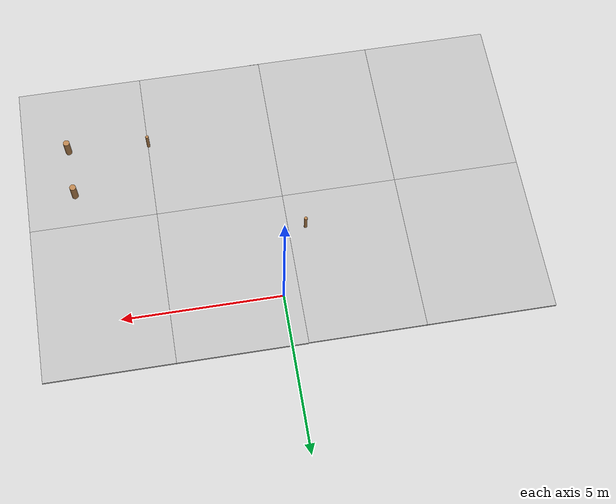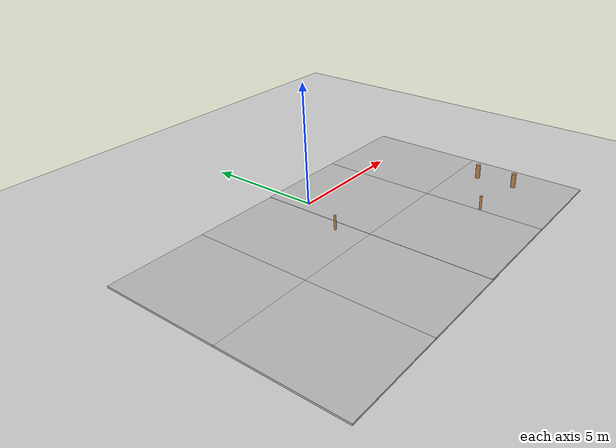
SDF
<sdf version="1.7">
 <world name="default">
  <light name="sun" type="directional">
   <pose>0 0 1000 -0.35 -0.5 0</pose>
   <diffuse>0.8 0.8 0.8 1</diffuse>
   <specular>0.2 0.2 0.2 1</specular>
   <attenuation>
    <range>1000</range>
    <constant>0.9</constant>
    <linear>0.01</linear>
    <quadratic>0.001</quadratic>
   </attenuation>
   <direction>-0.5 0.1 -0.9</direction>
   <spot><inner_angle>0</inner_angle><outer_angle>0</outer_angle><falloff>0</falloff></spot>
  </light>
  <gravity>0 0 -9.8</gravity>
  <magnetic_field>6e-06 2.3e-05 -4.2e-05</magnetic_field>
  <atmosphere type="adiabatic"/>
  <physics name="default_physics" default="0" type="ode">
   <dart>
    <collision_detector>bullet</collision_detector>
    <solver><solver_type>dantzig</solver_type></solver>
   </dart>
   <max_step_size>0.005</max_step_size>
   <real_time_factor>1</real_time_factor>
   <real_time_update_rate>200</real_time_update_rate>
  </physics>
  <scene>
   <ambient>0.9 0.9 0.9 1</ambient>
   <sky><clouds><speed>8</speed></clouds></sky>
   <grid>0</grid>
   <background>0.7 0.7 0.7 1</background>
   <shadows>1</shadows>
  </scene>
  <spherical_coordinates>
   <surface_model>EARTH_WGS84</surface_model>
   <latitude_deg>0</latitude_deg>
   <longitude_deg>0</longitude_deg>
   <elevation>0</elevation>
   <heading_deg>0</heading_deg>
  </spherical_coordinates>
  <model name="my_grass_plane">
   <static>1</static>
   <link name="link">
    <collision name="collision">
     <geometry><plane><normal>0 0 1</normal><size>60 60</size></plane></geometry>
     <surface><friction><ode><mu>100</mu><mu2>50</mu2></ode></friction></surface>
    </collision>
    <visual name="visual">
     <cast_shadows>0</cast_shadows>
     <geometry><plane><normal>0 0 1</normal><size>60 60</size></plane></geometry>
     <material>
      <script>
       <uri>model://my_grass_plane/materials/scripts</uri>
       <uri>model://my_grass_plane/materials/textures/</uri>
       <name>MyGrassPlane/Image</name>
      </script>
     </material>
    </visual>
   </link>
   <pose>0 0 -0.05 0 -0 0</pose>
  </model>
  <model name="small_peg_02">
   <link name="link">
    <pose>0 0 0.35 0 -0 0</pose>
    <inertial>
     <mass>0.0175</mass>
     <inertia>
      <ixx>9.74923e-06</ixx>
      <ixy>0</ixy>
      <ixz>0</ixz>
      <iyy>9.74923e-06</iyy>
      <iyz>0</iyz>
      <izz>8.31797e-07</izz>
     </inertia>
    </inertial>
    <collision name="collision">
     <geometry><cylinder><radius>0.05</radius><length>0.6</length></cylinder></geometry>
     <surface>
      <contact>
       <poissons_ratio>0.347</poissons_ratio>
       <elastic_modulus>8.8e+09</elastic_modulus>
       <ode><kp>100000</kp><kd>100</kd><max_vel>100</max_vel><min_depth>0.001</min_depth></ode>
      </contact>
      <friction>
       <torsional>
        <coefficient>1</coefficient>
        <use_patch_radius>0</use_patch_radius>
        <surface_radius>0.01</surface_radius>
       </torsional>
      </friction>
     </surface>
    </collision>
    <visual name="visual">
     <geometry><cylinder><radius>0.05</radius><length>0.6</length></cylinder></geometry>
     <material>
      <script><uri>file://media/materials/scripts/gazebo.material</uri><name>Gazebo/Wood</name></script>
     </material>
    </visual>
   </link>
   <pose>3.47449 -5.82021 0 0 -0 0</pose>
   <static>1</static>
  </model>
  <model name="small_peg_01">
   <link name="link">
    <pose>0 0 0.35 0 -0 0</pose>
    <inertial>
     <mass>0.0175</mass>
     <inertia>
      <ixx>9.74923e-06</ixx>
      <ixy>0</ixy>
      <ixz>0</ixz>
      <iyy>9.74923e-06</iyy>
      <iyz>0</iyz>
      <izz>8.31797e-07</izz>
     </inertia>
    </inertial>
    <collision name="collision">
     <geometry><cylinder><radius>0.05</radius><length>0.6</length></cylinder></geometry>
     <surface>
      <contact>
       <poissons_ratio>0.347</poissons_ratio>
       <elastic_modulus>8.8e+09</elastic_modulus>
       <ode><kp>100000</kp><kd>100</kd><max_vel>100</max_vel><min_depth>0.001</min_depth></ode>
      </contact>
      <friction>
       <torsional>
        <coefficient>1</coefficient>
        <use_patch_radius>0</use_patch_radius>
        <surface_radius>0.01</surface_radius>
       </torsional>
      </friction>
     </surface>
    </collision>
    <visual name="visual">
     <geometry><cylinder><radius>0.05</radius><length>0.6</length></cylinder></geometry>
     <material>
      <script><uri>file://media/materials/scripts/gazebo.material</uri><name>Gazebo/Wood</name></script>
     </material>
    </visual>
   </link>
   <pose>-1.04201 -2.18173 0 0 -0 0</pose>
   <static>1</static>
  </model>
  <model name="peg_05">
   <link name="link">
    <pose>0 0 0.35 0 -0 0</pose>
    <inertial>
     <mass>0.0175</mass>
     <inertia>
      <ixx>9.74923e-06</ixx>
      <ixy>0</ixy>
      <ixz>0</ixz>
      <iyy>9.74923e-06</iyy>
      <iyz>0</iyz>
      <izz>8.31797e-07</izz>
     </inertia>
    </inertial>
    <collision name="collision">
     <geometry><cylinder><radius>0.1</radius><length>0.6</length></cylinder></geometry>
     <surface>
      <contact>
       <poissons_ratio>0.347</poissons_ratio>
       <elastic_modulus>8.8e+09</elastic_modulus>
       <ode><kp>100000</kp><kd>100</kd><max_vel>100</max_vel><min_depth>0.001</min_depth></ode>
      </contact>
      <friction>
       <torsional>
        <coefficient>1</coefficient>
        <use_patch_radius>0</use_patch_radius>
        <surface_radius>0.01</surface_radius>
       </torsional>
      </friction>
     </surface>
    </collision>
    <visual name="visual">
     <geometry><cylinder><radius>0.1</radius><length>0.6</length></cylinder></geometry>
     <material>
      <script><uri>file://media/materials/scripts/gazebo.material</uri><name>Gazebo/Wood</name></script>
     </material>
    </visual>
   </link>
   <pose>5.97403 -4.38725 0 0 -0 0</pose>
   <static>1</static>
  </model>
  <model name="peg_08">
   <link name="link">
    <pose>0 0 0.35 0 -0 0</pose>
    <inertial>
     <mass>0.0175</mass>
     <inertia>
      <ixx>9.74923e-06</ixx>
      <ixy>0</ixy>
      <ixz>0</ixz>
      <iyy>9.74923e-06</iyy>
      <iyz>0</iyz>
      <izz>8.31797e-07</izz>
     </inertia>
    </inertial>
    <collision name="collision">
     <geometry><cylinder><radius>0.1</radius><length>0.6</length></cylinder></geometry>
     <surface>
      <contact>
       <poissons_ratio>0.347</poissons_ratio>
       <elastic_modulus>8.8e+09</elastic_modulus>
       <ode><kp>100000</kp><kd>100</kd><max_vel>100</max_vel><min_depth>0.001</min_depth></ode>
      </contact>
      <friction>
       <torsional>
        <coefficient>1</coefficient>
        <use_patch_radius>0</use_patch_radius>
        <surface_radius>0.01</surface_radius>
       </torsional>
      </friction>
     </surface>
    </collision>
    <visual name="visual">
     <geometry><cylinder><radius>0.1</radius><length>0.6</length></cylinder></geometry>
     <material>
      <script><uri>file://media/materials/scripts/gazebo.material</uri><name>Gazebo/Wood</name></script>
     </material>
    </visual>
   </link>
   <pose>6.03533 -6.00094 0 0 -0 0</pose>
   <static>1</static>
  </model>
  <audio><device>default</device></audio>
  <model name="mud_box">
   <static>1</static>
   <link name="link">
    <collision name="collision"><geometry><box><size>8 10 0.2</size></box></geometry></collision>
    <visual name="visual_1">
     <pose>-2 2.5 0 0 -0 0</pose>
     <cast_shadows>0</cast_shadows>
     <geometry><box><size>4 5 0.2</size></box></geometry>
     <material>
      <script>
       <uri>model://mud_box/materials/scripts</uri>
       <uri>model://mud_box/materials/textures</uri>
       <name>vrc/mud</name>
      </script>
     </material>
    </visual>
    <visual name="visual_2">
     <pose>2 2.5 0 0 -0 0</pose>
     <cast_shadows>0</cast_shadows>
     <geometry><box><size>4 5 0.2</size></box></geometry>
     <material>
      <script>
       <uri>model://mud_box/materials/scripts</uri>
       <uri>model://mud_box/materials/textures</uri>
       <name>vrc/mud</name>
      </script>
     </material>
    </visual>
    <visual name="visual_3">
     <pose>2 -2.5 0 0 -0 0</pose>
     <cast_shadows>0</cast_shadows>
     <geometry><box><size>4 5 0.2</size></box></geometry>
     <material>
      <script>
       <uri>model://mud_box/materials/scripts</uri>
       <uri>model://mud_box/materials/textures</uri>
       <name>vrc/mud</name>
      </script>
     </material>
    </visual>
    <visual name="visual_4">
     <pose>-2 -2.5 0 0 -0 0</pose>
     <cast_shadows>0</cast_shadows>
     <geometry><box><size>4 5 0.2</size></box></geometry>
     <material>
      <script>
       <uri>model://mud_box/materials/scripts</uri>
       <uri>model://mud_box/materials/textures</uri>
       <name>vrc/mud</name>
      </script>
     </material>
    </visual>
   </link>
   <pose>3.50034 -3.37016 -0.085716 0 -0 0</pose>
  </model>
  <model name="mud_box_0">
   <static>1</static>
   <link name="link">
    <collision name="collision"><geometry><box><size>8 10 0.2</size></box></geometry></collision>
    <visual name="visual_1">
     <pose>-2 2.5 0 0 -0 0</pose>
     <cast_shadows>0</cast_shadows>
     <geometry><box><size>4 5 0.2</size></box></geometry>
     <material>
      <script>
       <uri>model://mud_box/materials/scripts</uri>
       <uri>model://mud_box/materials/textures</uri>
       <name>vrc/mud</name>
      </script>
     </material>
    </visual>
    <visual name="visual_2">
     <pose>2 2.5 0 0 -0 0</pose>
     <cast_shadows>0</cast_shadows>
     <geometry><box><size>4 5 0.2</size></box></geometry>
     <material>
      <script>
       <uri>model://mud_box/materials/scripts</uri>
       <uri>model://mud_box/materials/textures</uri>
       <name>vrc/mud</name>
      </script>
     </material>
    </visual>
    <visual name="visual_3">
     <pose>2 -2.5 0 0 -0 0</pose>
     <cast_shadows>0</cast_shadows>
     <geometry><box><size>4 5 0.2</size></box></geometry>
     <material>
      <script>
       <uri>model://mud_box/materials/scripts</uri>
       <uri>model://mud_box/materials/textures</uri>
       <name>vrc/mud</name>
      </script>
     </material>
    </visual>
    <visual name="visual_4">
     <pose>-2 -2.5 0 0 -0 0</pose>
     <cast_shadows>0</cast_shadows>
     <geometry><box><size>4 5 0.2</size></box></geometry>
     <material>
      <script>
       <uri>model://mud_box/materials/scripts</uri>
       <uri>model://mud_box/materials/textures</uri>
       <name>vrc/mud</name>
      </script>
     </material>
    </visual>
   </link>
   <pose>-4.13141 -3.38345 -0.095174 0 -0 0</pose>
  </model>
 </world>
</sdf>
